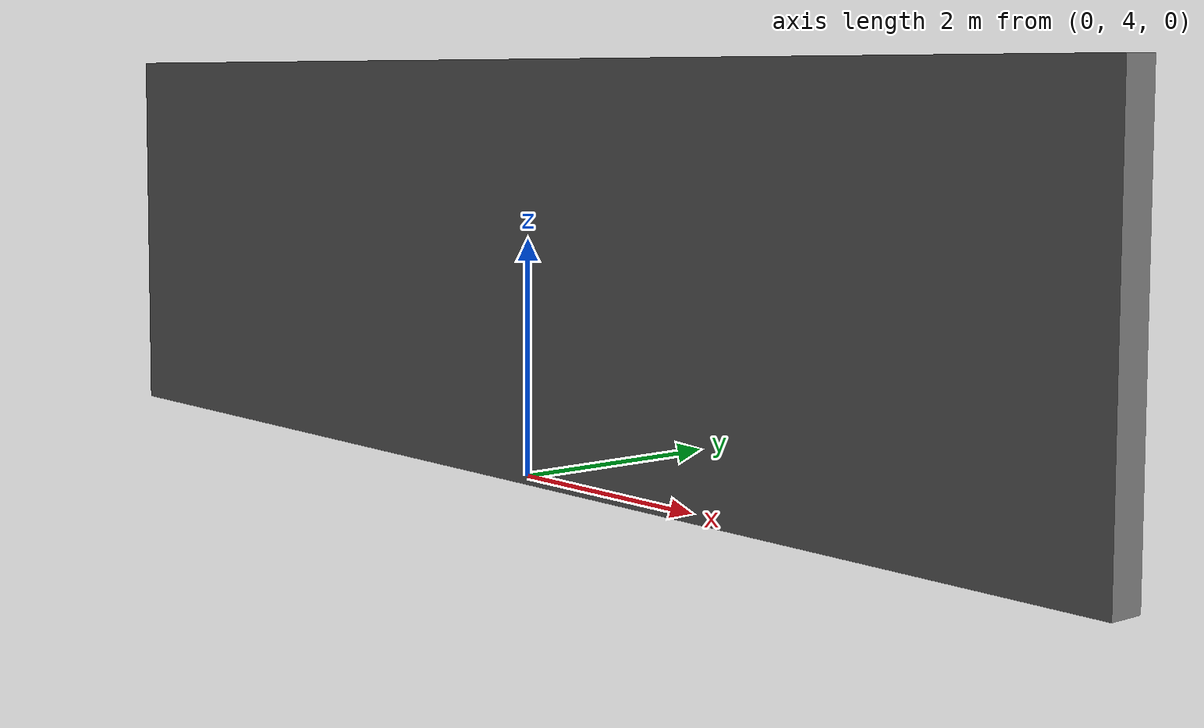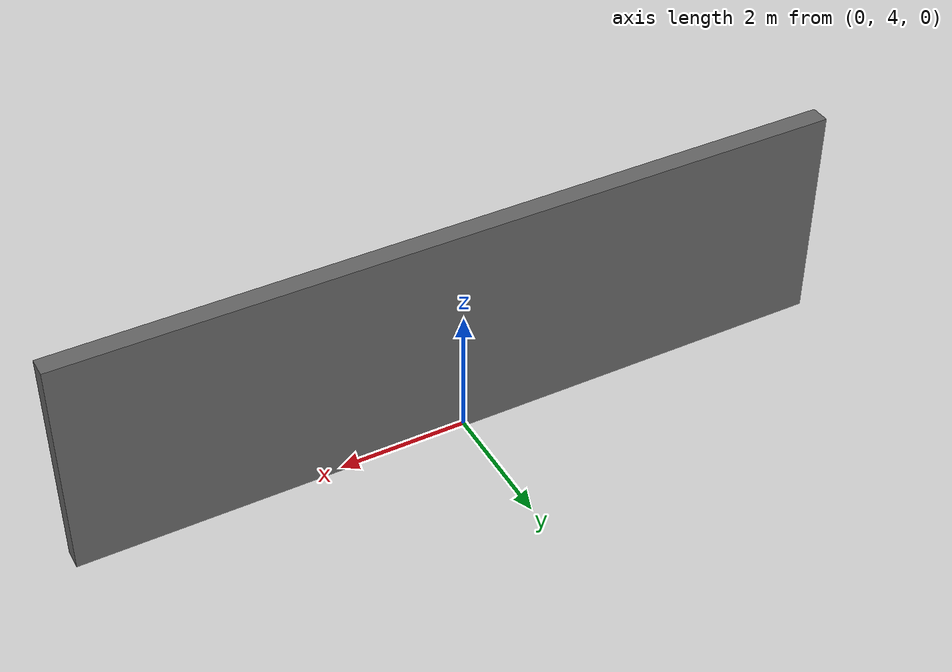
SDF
<?xml version="1.0" ?>
<sdf version="1.10">
    <model name="verticalWall0_3x12x3_5">
      <static>true</static>
      <pose>0 3.9 1.75 0 0 1.5708</pose>
      <link name="link">
        <collision name="collision">
          <geometry><box><size>0.3 12.0 3.5</size></box></geometry>
        </collision>
        <visual name="visual">
          <geometry><box><size>0.3 12.0 3.5</size></box></geometry>
          <material>
            <ambient>0.4 0.4 0.4 1</ambient>
            <diffuse>0.4 0.4 0.4 1</diffuse>
            <specular>0.2 0.2 0.2 1</specular>
          </material>
          <plugin
            filename="gz-sim-thermal-system"
            name="gz::sim::systems::Thermal">
            <temperature>292.1</temperature>
            <emissivity>0.9</emissivity>
          </plugin>
        </visual>
      </link>
    </model>
</sdf>
